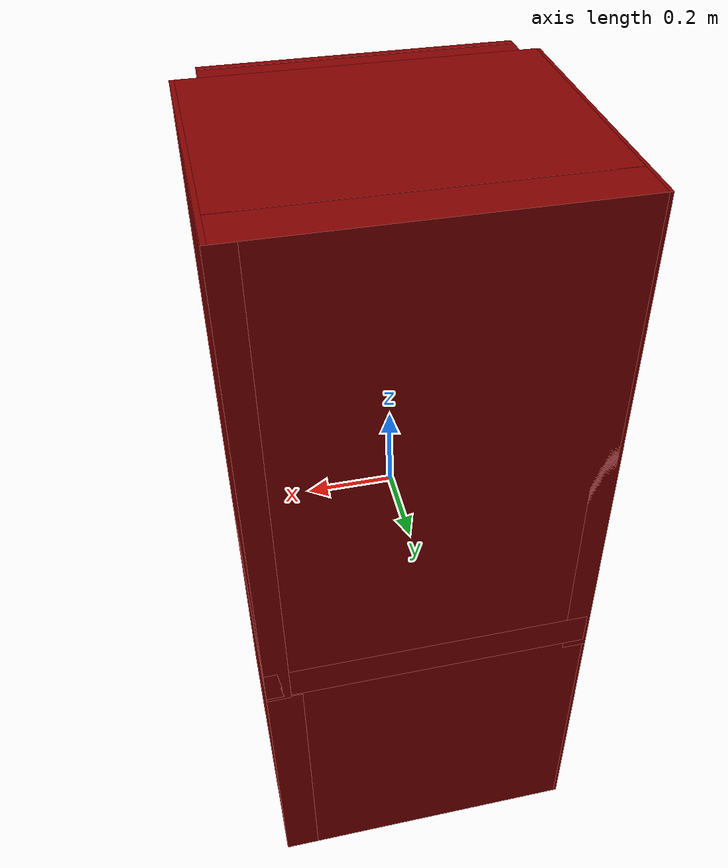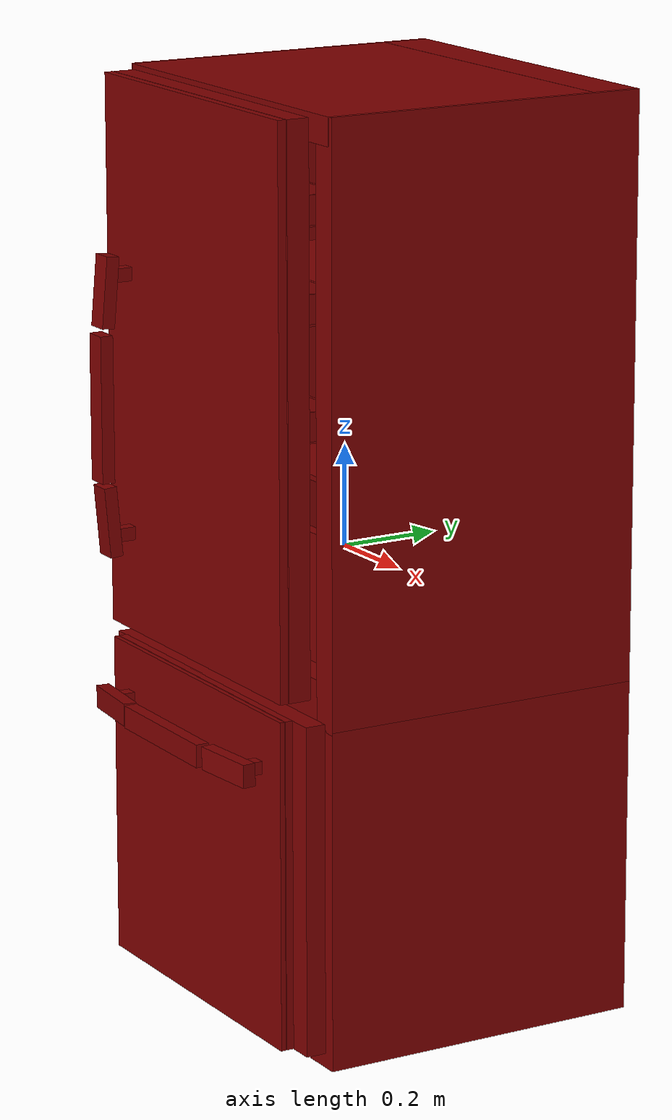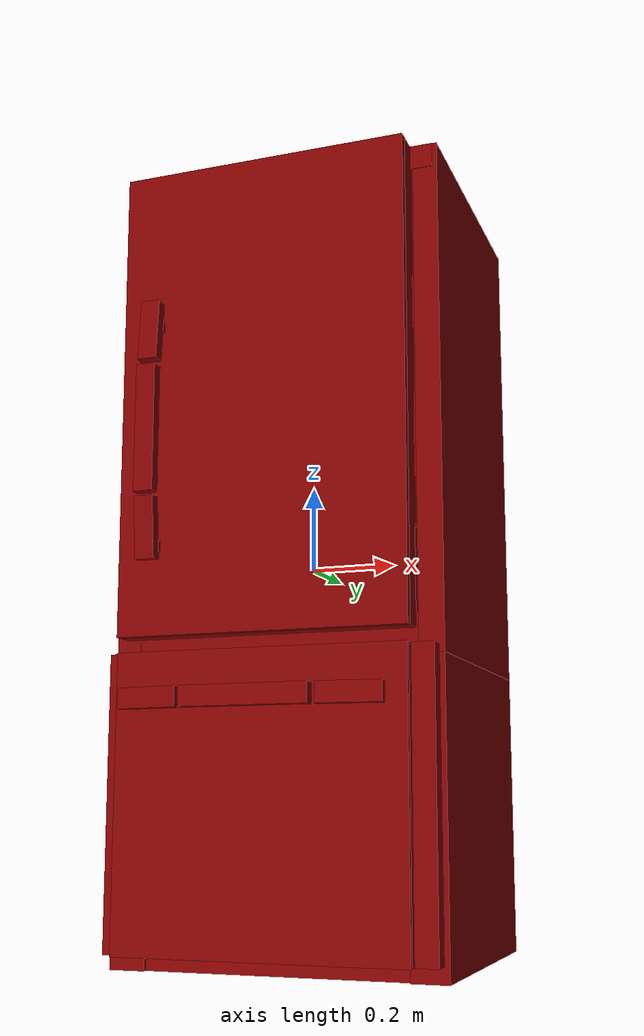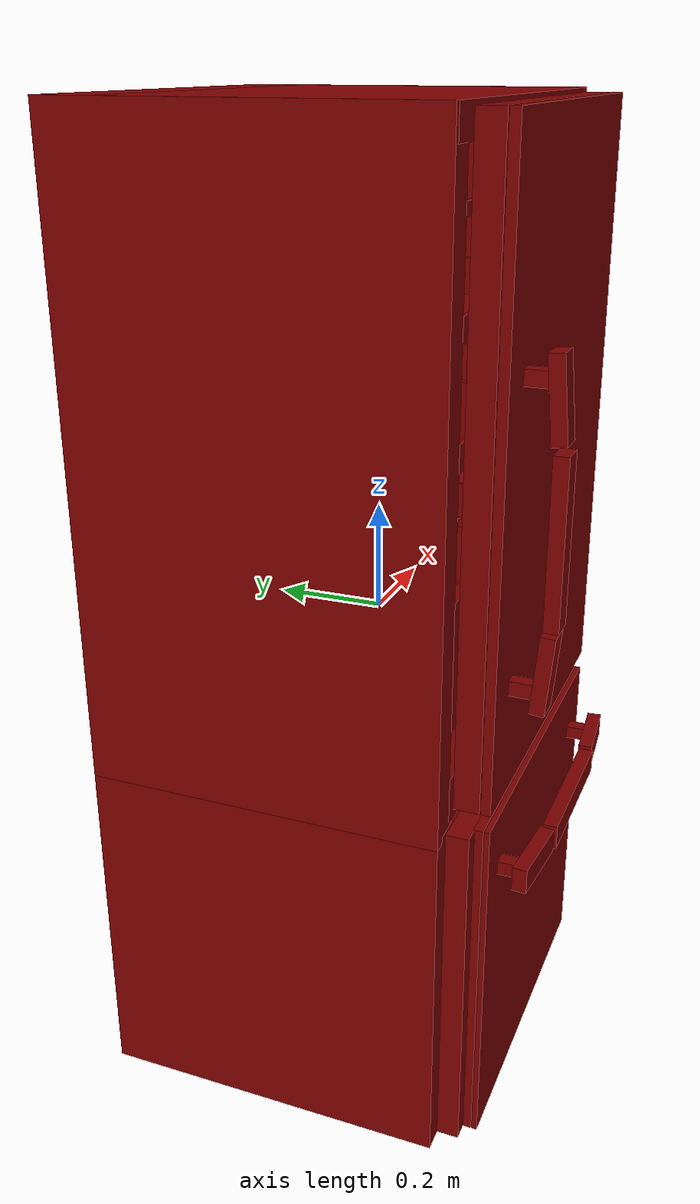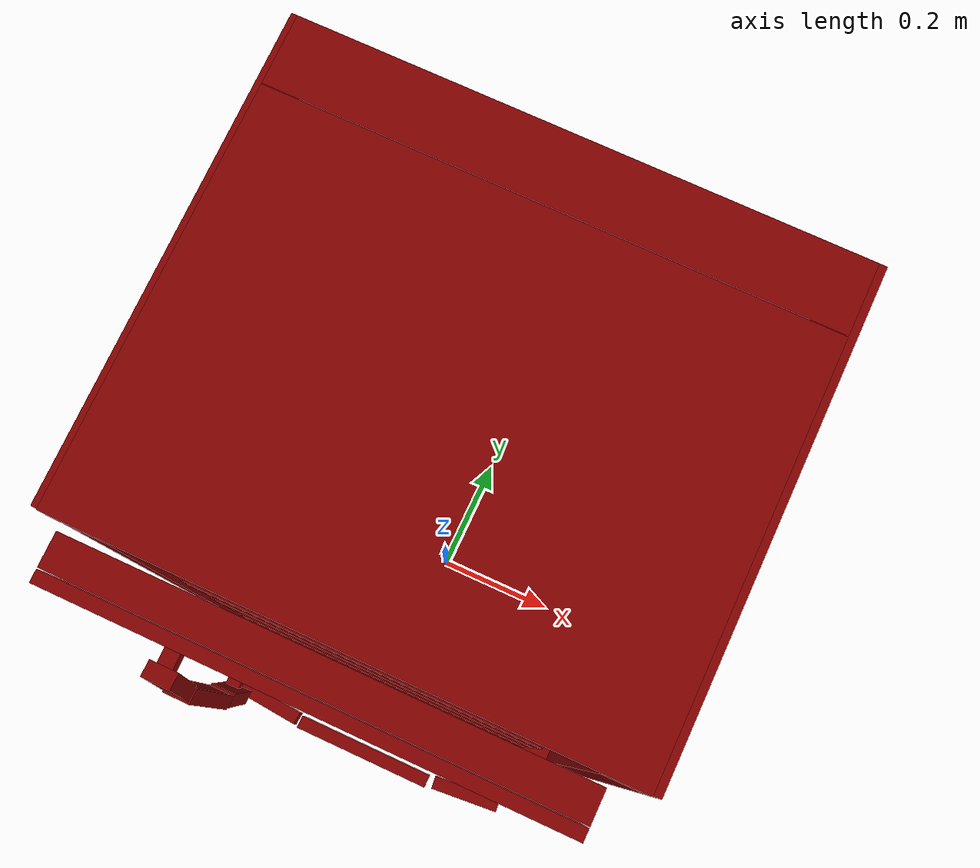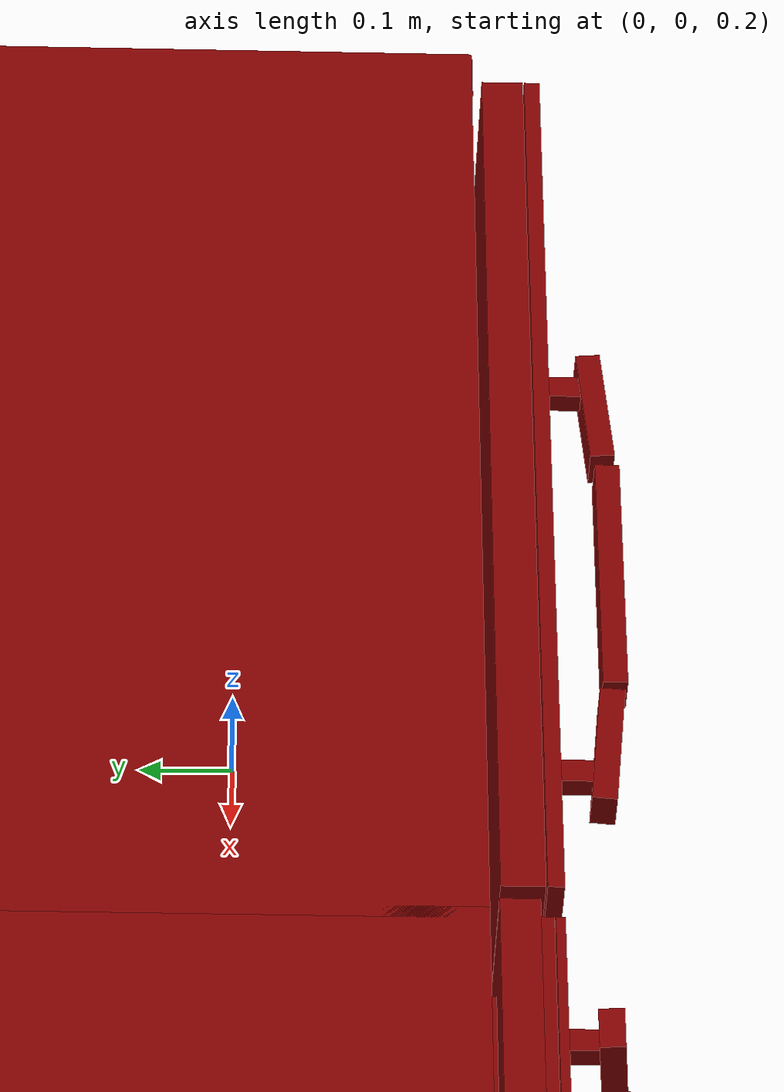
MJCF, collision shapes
<?xml version='1.0' encoding='UTF-8'?>
<mujoco model="model">
  <option timestep="0.002" gravity="0.0 0.0 -9.81"/>
  <compiler angle="radian"/>
  <asset>
    <mesh file="visuals/freezer0.obj" name="freezer0_vis"/>
    <mesh file="visuals/fridge_door.obj" name="fridge_door_vis"/>
    <mesh file="visuals/fridge_door_Clear.obj" name="fridge_door_Clear_vis"/>
    <mesh file="visuals/fridge_drawer0.obj" name="fridge_drawer0_vis"/>
    <mesh file="visuals/Body001.obj" name="Body001_vis"/>
    <mesh file="visuals/Body001_Clear.obj" name="Body001_Clear_vis"/>
    <texture file="visuals/T_BC001.png" name="Body001_material" type="2d"/>
    <material name="Body001_material" rgba="1 1 1 1.0" texture="Body001_material" shininess="2" specular="2"/>
    <texture file="visuals/T_BC001.png" name="freezer0_material" type="2d"/>
    <material name="freezer0_material" rgba="1 1 1 1.0" texture="freezer0_material" shininess="2" specular="2"/>
    <texture file="visuals/T_BC001.png" name="fridge_door_material" type="2d"/>
    <material name="fridge_door_material" rgba="1 1 1 1.0" texture="fridge_door_material" shininess="2" specular="2"/>
    <texture file="visuals/T_BC001.png" name="fridge_door_Clear_material" type="2d"/>
    <material name="fridge_door_Clear_material" rgba="1 1 1 0.699999988079071" texture="fridge_door_Clear_material" shininess="0.4472135901451111" specular="0.3103448502657381"/>
    <texture file="visuals/T_BC001.png" name="fridge_drawer0_material" type="2d"/>
    <material name="fridge_drawer0_material" rgba="1 1 1 1.0" texture="fridge_drawer0_material" shininess="0.4" specular="0.3"/>
    <texture file="visuals/T_BC001.png" name="Body001_Clear_material" type="2d"/>
    <material name="Body001_Clear_material" rgba="1 1 1 0.699999988079071" texture="Body001_Clear_material" shininess="0.4472135901451111" specular="0.3103448502657381"/>
  </asset>
  <default>
    <default class="visual">
      <geom conaffinity="0" contype="0" group="1" type="mesh"/>
    </default>
    <default class="collision">
      <geom group="0" rgba="0.5 0 0 0.5"/>
    </default>
    <default class="spawn">
      <geom group="0" rgba="1 1 1 0.5" contype="0" conaffinity="0"/>
      <site group="0" rgba="1 1 1 0.5"/>
    </default>
    <default class="region">
      <geom group="1" conaffinity="0" contype="0" rgba="0 1 0 0"/>
    </default>
  </default>
  <worldbody>
    <body>
      <body name="object">
        <geom mesh="Body001_vis" type="mesh" solimp="0.998 0.998 0.001" solref="0.001 1" friction="0.95 0.3 0.1" class="visual" material="Body001_material"/>
        <geom class="collision" type="box" pos="-0.00132427 0.08647035 0.17670816" size="0.37417975068092346 0.22579221427440643 0.0051087625324726105" quat="1.0 0.0 0.0 0.0"/>
        <geom class="collision" type="box" pos="-0.00132427 0.08647034 0.53042716" size="0.37417978048324585 0.22579224407672882 0.0051087625324726105" quat="1.0 0.0 0.0 0.0"/>
        <geom class="collision" type="box" pos="-0.00132428 0.35482708 -0.53414357" size="0.3741800785064697 0.054651711136102676 0.3747186064720154" quat="1.0 0.0 0.0 0.0"/>
        <geom class="collision" type="box" pos="-0.00132429 0.36125765 0.37613875" size="0.3741801083087921 0.04822123423218727 0.5327246189117432" quat="1.0 0.0 0.0 0.0"/>
        <geom class="collision" type="box" pos="0.00380016 0.07938416 -0.19324231" size="0.37930431962013245 0.3300948739051819 0.041794225573539734" quat="1.0 0.0 0.0 0.0"/>
        <geom class="collision" type="box" pos="-0.00132427 0.03735656 -0.87480968" size="0.3741801679134369 0.2783331573009491 0.034052684903144836" quat="1.0 0.0 0.0 0.0"/>
        <geom class="collision" type="box" pos="-0.34154841 0.07844570 -0.57383072" size="0.041556645184755325 0.33103281259536743 0.3350312411785126" quat="1.0 0.0 0.0 0.0"/>
        <geom class="collision" type="box" pos="0.34154838 0.07844593 -0.57383060" size="0.041556742042303085 0.3310330808162689 0.335031121969223" quat="1.0 0.0 0.0 0.0"/>
        <geom class="collision" type="box" pos="-0.35467738 0.07844584 0.32842320" size="0.028427937999367714 0.33103299140930176 0.5804387927055359" quat="1.0 0.0 0.0 0.0"/>
        <geom class="collision" type="box" pos="0.35467729 0.07844590 0.33269936" size="0.02842778153717518 0.3310331106185913 0.5761625170707703" quat="1.0 0.0 0.0 0.0"/>
        <geom class="collision" type="box" pos="-0.00132427 0.02918037 0.88173908" size="0.37418004870414734 0.28308242559432983 0.02712307870388031" quat="1.0 0.0 0.0 0.0"/>
        <geom class="collision" type="box" pos="-0.32422045 0.08647034 0.51461536" size="0.01206718198955059 0.22579249739646912 0.011566150933504105" quat="1.0 0.0 0.0 0.0"/>
        <geom class="collision" type="box" pos="-0.32422045 0.08647034 0.16273755" size="0.012067182920873165 0.2257925271987915 0.011566150933504105" quat="1.0 0.0 0.0 0.0"/>
        <geom class="collision" type="box" pos="0.32550916 0.08647034 0.16273755" size="0.01206718385219574 0.2257925420999527 0.011566150933504105" quat="1.0 0.0 0.0 0.0"/>
        <geom class="collision" type="box" pos="0.32550916 0.08647034 0.51461536" size="0.012067184783518314 0.22579257190227509 0.011566150933504105" quat="1.0 0.0 0.0 0.0"/>
        <body name="freezer0">
          <geom class="region" name="reg_freezer0" type="box" pos="-0.0005586050000000037 -0.0009228599999999976 -0.5382348" size="0.23892866499999998 0.24332144 0.25363413999999995"/>
          <joint axis="0.0 -1.0 0.0" pos="0.00034483 -0.06891750 -0.54695886" limited="true" name="freezer0_door_joint" range="0.0 0.45" type="slide" damping="1" frictionloss="1" armature=".01" stiffness="0.05"/>
          <geom mesh="freezer0_vis" type="mesh" solimp="0.998 0.998 0.001" solref="0.001 1" friction="0.95 0.3 0.1" class="visual" material="freezer0_material"/>
          <geom class="collision" type="box" pos="0.00003972 -0.28308561 -0.54695880" size="0.3740020990371704 0.020226052030920982 0.3251439034938812" quat="1.0 0.0 0.0 0.0"/>
          <geom class="collision" type="box" pos="-0.00973560 -0.30985197 -0.54695880" size="0.3332148492336273 0.008654099889099598 0.3251439034938812" quat="1.0 0.0 0.0 0.0"/>
          <geom class="collision" type="box" pos="0.27051046 -0.01980602 -0.55514675" size="0.018672218546271324 0.29136648774147034 0.27368825674057007" quat="1.0 0.0 0.0 0.0"/>
          <geom class="collision" type="box" pos="-0.27202255 -0.01980601 -0.55586797" size="0.018672257661819458 0.2913665175437927 0.2737833261489868" quat="1.0 0.0 0.0 0.0"/>
          <geom class="collision" type="box" pos="-0.00033687 0.25978116 -0.55023587" size="0.28934913873672485 0.011779104359447956 0.26930028200149536" quat="1.0 0.0 0.0 0.0"/>
          <geom class="collision" type="box" pos="-0.00033687 -0.25925048 -0.55718905" size="0.28934913873672485 0.01023427676409483 0.2735721170902252" quat="1.0 0.0 0.0 0.0"/>
          <geom class="collision" type="box" pos="-0.00033687 -0.02304666 -0.81356335" size="0.28934913873672485 0.2946069836616516 0.017482852563261986" quat="1.0 0.0 0.0 0.0"/>
          <geom class="collision" type="box" pos="-0.23701870 -0.38107946 -0.32789975" size="0.022651134058833122 0.013191415928304195 0.07023172080516815" quat="0.706433892250061 0.030843518674373627 0.7064336538314819 -0.03084350936114788" name="freezer0_door_handle_1"/>
          <geom class="collision" type="box" pos="0.21538550 -0.38008385 -0.32789975" size="0.022651134058833122 0.013191415928304195 0.07023172080516815" quat="0.7064341306686401 0.030843526124954224 -0.7064334154129028 0.030843494459986687" name="freezer0_door_handle_2"/>
          <geom class="collision" type="box" pos="0.24253380 -0.34523793 -0.32789975" size="0.01320348959416151 0.022546811029314995 0.012457434087991714" quat="1.0 0.0 0.0 0.0" name="freezer0_door_handle_3"/>
          <geom class="collision" type="box" pos="-0.27136669 -0.34523811 -0.32789975" size="0.013203483074903488 0.022546811029314995 0.012457434087991714" quat="1.0 0.0 0.0 0.0" name="freezer0_door_handle_4"/>
          <geom class="collision" type="box" pos="-0.01301012 -0.39052718 -0.32789975" size="0.145441934466362 0.013191433623433113 0.022651178762316704" quat="1.0 0.0 0.0 0.0" name="freezer0_door_handle_main"/>
          <geom class="collision" type="box" pos="-0.00973560 -0.32484036 -0.54695880" size="0.3332167863845825 0.0049146367236971855 0.325145959854126" quat="1.0 0.0 0.0 0.0" name="freezer0_door_main"/>
        </body>
        <body name="fridge_door">
          <joint axis="0.0 0.0 1.0" pos="0.34581572 -0.29952835 0.34782299" limited="true" name="fridge_door_joint" range="0.0 1.5707963267948966" type="hinge" damping="1" frictionloss="1" armature=".01" stiffness="0.05"/>
          <geom mesh="fridge_door_vis" type="mesh" solimp="0.998 0.998 0.001" solref="0.001 1" friction="0.95 0.3 0.1" class="visual" material="fridge_door_material"/>
          <geom class="collision" type="box" pos="0.00951380 -0.20644934 0.69032693" size="0.24514779448509216 0.04812924936413765 0.002827966585755348" quat="1.0 0.0 0.0 0.0"/>
          <geom class="collision" type="box" pos="0.00933172 -0.20664053 0.50504500" size="0.24514779448509216 0.04812924936413765 0.002828083001077175" quat="1.0 0.0 0.0 0.0"/>
          <geom class="collision" type="box" pos="0.00933172 -0.20664053 0.28461951" size="0.24514779448509216 0.04812924936413765 0.002827922347933054" quat="1.0 0.0 0.0 0.0"/>
          <geom class="collision" type="box" pos="0.00951432 -0.15874231 0.71878082" size="0.24513594806194305 0.003358558053150773 0.02796897292137146" quat="1.0 0.0 0.0 0.0"/>
          <geom class="collision" type="box" pos="0.00933287 -0.15893351 0.53451723" size="0.24513614177703857 0.003358560148626566 0.027968911454081535" quat="1.0 0.0 0.0 0.0"/>
          <geom class="collision" type="box" pos="0.00933224 -0.15893351 0.31323844" size="0.2451363503932953 0.003358562244102359 0.02796892821788788" quat="1.0 0.0 0.0 0.0"/>
          <geom class="collision" type="box" pos="0.00951380 -0.25268137 0.71699339" size="0.24514888226985931 0.0011944178259000182 0.027969827875494957" quat="1.0 0.0 0.0 0.0"/>
          <geom class="collision" type="box" pos="0.00933172 -0.25259363 0.53273004" size="0.24514888226985931 0.0011944178259000182 0.027969829738140106" quat="1.0 0.0 0.0 0.0"/>
          <geom class="collision" type="box" pos="0.00933172 -0.25281935 0.31145126" size="0.24514888226985931 0.0011944178259000182 0.027969826012849808" quat="1.0 0.0 0.0 0.0"/>
          <geom class="collision" type="box" pos="0.25303337 -0.20575220 0.71878082" size="0.002283500973135233 0.04793621972203255 0.027969839051365852" quat="1.0 0.0 0.0 0.0"/>
          <geom class="collision" type="box" pos="0.25285131 -0.20594340 0.53451759" size="0.002283500973135233 0.04793621972203255 0.027969837188720703" quat="1.0 0.0 0.0 0.0"/>
          <geom class="collision" type="box" pos="0.25285131 -0.20594340 0.31323880" size="0.002283500973135233 0.04793621972203255 0.027969839051365852" quat="1.0 0.0 0.0 0.0"/>
          <geom class="collision" type="box" pos="-0.23578268 -0.20606310 0.71878082" size="0.002009796677157283 0.047936297953128815 0.027969839051365852" quat="1.0 0.0 0.0 0.0"/>
          <geom class="collision" type="box" pos="-0.23596476 -0.20625429 0.53451759" size="0.002009796677157283 0.047936297953128815 0.027969837188720703" quat="1.0 0.0 0.0 0.0"/>
          <geom class="collision" type="box" pos="-0.23596476 -0.20625429 0.31323880" size="0.002009796677157283 0.047936297953128815 0.027969839051365852" quat="1.0 0.0 0.0 0.0"/>
          <geom class="collision" type="box" pos="-0.25110477 -0.38539409 0.04445478" size="0.022651134058833122 0.01319141685962677 0.07023172080516815" quat="0.9990482330322266 0.04361938312649727 -1.2202613675071916e-07 -6.191567081259564e-08" name="fridge_door_handle_1"/>
          <geom class="collision" type="box" pos="-0.25110471 -0.38439854 0.49685901" size="0.022651134058833122 0.013191415928304195 0.07023172080516815" quat="6.738355295965448e-07 -3.782315260991709e-08 -0.9990482330322266 0.043619249016046524" name="fridge_door_handle_2"/>
          <geom class="collision" type="box" pos="-0.25651452 -0.34981134 0.52610070" size="0.012457430362701416 0.022546809166669846 0.013203483074903488" quat="1.0 0.0 0.0 0.0" name="fridge_door_handle_3"/>
          <geom class="collision" type="box" pos="-0.25651452 -0.34981146 0.01220018" size="0.012457430362701416 0.022546809166669846 0.013203475624322891" quat="1.0 0.0 0.0 0.0" name="fridge_door_handle_4"/>
          <geom class="collision" type="box" pos="-0.25110474 -0.39484184 0.26846337" size="0.022651171311736107 0.01319141685962677 0.1454419195652008" quat="1.0 0.0 0.0 0.0" name="fridge_door_handle_main"/>
          <geom class="collision" type="box" pos="-0.01024327 -0.28841349 0.35733730" size="0.33568090200424194 0.022666381672024727 0.5448141694068909" quat="1.0 0.0 0.0 0.0"/>
          <geom class="collision" type="box" pos="-0.01024327 -0.32137086 0.35733730" size="0.33568090200424194 0.008578317239880562 0.5448152422904968" quat="1.0 0.0 0.0 0.0" name="fridge_door_main"/>
          <body name="fridge_door_Clear">
            <geom mesh="fridge_door_Clear_vis" type="mesh" solimp="0.998 0.998 0.001" solref="0.001 1" friction="0.95 0.3 0.1" class="visual" material="fridge_door_Clear_material"/>
            <geom class="collision" type="box" pos="0.00951380 -0.20644934 0.69032693" size="0.24514779448509216 0.04812924936413765 0.002827966585755348" quat="1.0 0.0 0.0 0.0"/>
            <geom class="collision" type="box" pos="0.00933172 -0.20664053 0.50504500" size="0.24514779448509216 0.04812924936413765 0.002828083001077175" quat="1.0 0.0 0.0 0.0"/>
            <geom class="collision" type="box" pos="0.00933172 -0.20664053 0.28461951" size="0.24514779448509216 0.04812924936413765 0.002827922347933054" quat="1.0 0.0 0.0 0.0"/>
            <geom class="collision" type="box" pos="0.00951432 -0.15874231 0.71878082" size="0.24513594806194305 0.003358558053150773 0.02796897292137146" quat="1.0 0.0 0.0 0.0"/>
            <geom class="collision" type="box" pos="0.00933287 -0.15893351 0.53451723" size="0.24513614177703857 0.003358560148626566 0.027968911454081535" quat="1.0 0.0 0.0 0.0"/>
            <geom class="collision" type="box" pos="0.00933224 -0.15893351 0.31323844" size="0.2451363503932953 0.003358562244102359 0.02796892821788788" quat="1.0 0.0 0.0 0.0"/>
            <geom class="collision" type="box" pos="0.00951380 -0.25268137 0.71699339" size="0.24514888226985931 0.0011944178259000182 0.027969827875494957" quat="1.0 0.0 0.0 0.0"/>
            <geom class="collision" type="box" pos="0.00933172 -0.25259363 0.53273004" size="0.24514888226985931 0.0011944178259000182 0.027969829738140106" quat="1.0 0.0 0.0 0.0"/>
            <geom class="collision" type="box" pos="0.00933172 -0.25281935 0.31145126" size="0.24514888226985931 0.0011944178259000182 0.027969826012849808" quat="1.0 0.0 0.0 0.0"/>
            <geom class="collision" type="box" pos="0.25303337 -0.20575220 0.71878082" size="0.002283500973135233 0.04793621972203255 0.027969839051365852" quat="1.0 0.0 0.0 0.0"/>
            <geom class="collision" type="box" pos="0.25285131 -0.20594340 0.53451759" size="0.002283500973135233 0.04793621972203255 0.027969837188720703" quat="1.0 0.0 0.0 0.0"/>
            <geom class="collision" type="box" pos="0.25285131 -0.20594340 0.31323880" size="0.002283500973135233 0.04793621972203255 0.027969839051365852" quat="1.0 0.0 0.0 0.0"/>
            <geom class="collision" type="box" pos="-0.23578268 -0.20606310 0.71878082" size="0.002009796677157283 0.047936297953128815 0.027969839051365852" quat="1.0 0.0 0.0 0.0"/>
            <geom class="collision" type="box" pos="-0.23596476 -0.20625429 0.53451759" size="0.002009796677157283 0.047936297953128815 0.027969837188720703" quat="1.0 0.0 0.0 0.0"/>
            <geom class="collision" type="box" pos="-0.23596476 -0.20625429 0.31323880" size="0.002009796677157283 0.047936297953128815 0.027969839051365852" quat="1.0 0.0 0.0 0.0"/>
          </body>
        </body>
        <body name="fridge_drawer0">
          <geom class="region" name="reg_fridge_drawer0" type="box" pos="-0.0003834949999999837 0.04548909500000001 -0.024644970000000002" size="0.255296485 0.222782375 0.09926334"/>
          <joint axis="0.0 -1.0 0.0" pos="-0.00061369 0.04273889 -0.02051163" limited="true" name="fridge_drawer0_joint" range="0.0 0.45" type="slide" damping="1" frictionloss="1" armature=".01" stiffness="0.05"/>
          <geom mesh="fridge_drawer0_vis" type="mesh" solimp="0.998 0.998 0.001" solref="0.001 1" friction="0.95 0.3 0.1" class="visual" material="fridge_drawer0_material"/>
          <geom class="collision" type="box" pos="0.17851888 -0.19369576 -0.02051159" size="0.08892560750246048 0.01207040250301361 0.12481260299682617" quat="1.0 0.0 0.0 0.0"/>
          <geom class="collision" type="box" pos="-0.00073862 0.05632632 -0.12965617" size="0.2541712820529938 0.22895082831382751 0.0019586398266255856" quat="1.0 0.0 0.0 0.0"/>
          <geom class="collision" type="box" pos="0.00186950 0.29021136 -0.02498504" size="0.2543390393257141 0.0015486638294532895 0.10309312492609024" quat="1.0 0.0 0.0 0.0"/>
          <geom class="collision" type="box" pos="-0.26337826 0.04810555 -0.02555443" size="0.0017314404249191284 0.23050978779792786 0.10252406448125839" quat="1.0 0.0 0.0 0.0"/>
          <geom class="collision" type="box" pos="0.26215076 0.04842410 -0.02459180" size="0.0017314094584435225 0.23082895576953888 0.10348702222108841" quat="1.0 0.0 0.0 0.0"/>
          <geom class="collision" type="box" pos="-0.15567829 -0.19369566 -0.02051162" size="0.112993523478508 0.01207043044269085 0.12481257319450378" quat="1.0 0.0 0.0 0.0"/>
          <geom class="collision" type="box" pos="0.02345417 -0.19369579 -0.08979371" size="0.06613878160715103 0.012070483528077602 0.05553050339221954" quat="1.0 0.0 0.0 0.0"/>
          <geom class="collision" type="box" pos="0.02345417 -0.19369543 0.05460490" size="0.06613879650831223 0.012070480734109879 0.04969607666134834" quat="1.0 0.0 0.0 0.0"/>
          <geom class="collision" type="box" pos="0.02345417 -0.18214133 -0.01467720" size="0.06613880395889282 0.0005161454319022596 0.0195859856903553" quat="1.0 0.0 0.0 0.0"/>
        </body>
        <body name="Body001_Clear">
          <geom mesh="Body001_Clear_vis" type="mesh" solimp="0.998 0.998 0.001" solref="0.001 1" friction="0.95 0.3 0.1" class="visual" material="Body001_Clear_material"/>
          <geom class="collision" type="box" pos="-0.00132427 0.08647035 0.17670816" size="0.37417975068092346 0.22579221427440643 0.0051087625324726105" quat="1.0 0.0 0.0 0.0"/>
          <geom class="collision" type="box" pos="-0.00132427 0.08647034 0.53042716" size="0.37417978048324585 0.22579224407672882 0.0051087625324726105" quat="1.0 0.0 0.0 0.0"/>
        </body>
        <geom class="region" name="reg_fridge_shelf0" type="box" pos="0.0010316200000000109 0.08327404 0.342210525" size="0.31988516 0.21912124 0.155913645"/>
        <geom class="region" name="reg_fridge_shelf1" type="box" pos="0.0010316200000000109 0.08327404 0.6946054100000001" size="0.31988516 0.21912124 0.1541018"/>
        <geom class="region" name="reg_main" type="box" pos="-1.0000000022492017e-08 0.038042450000000005 0.0" size="0.38410531000000003 0.37243695 0.90986223"/>
      </body>
    </body>
  </worldbody>
  <actuator>
    <motor name="freezer0_door_joint_actuator" joint="freezer0_door_joint" gear="50"/>
    <motor name="fridge_door_joint_actuator" joint="fridge_door_joint" gear="50"/>
    <motor name="fridge_drawer0_joint_actuator" joint="fridge_drawer0_joint" gear="50"/>
  </actuator>
</mujoco>
